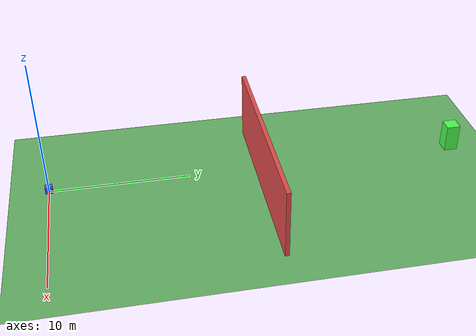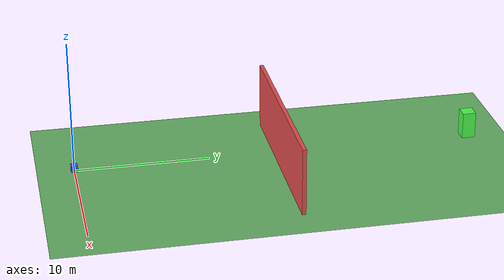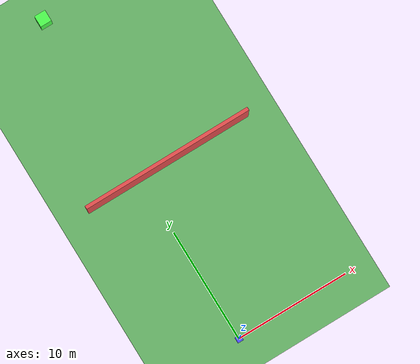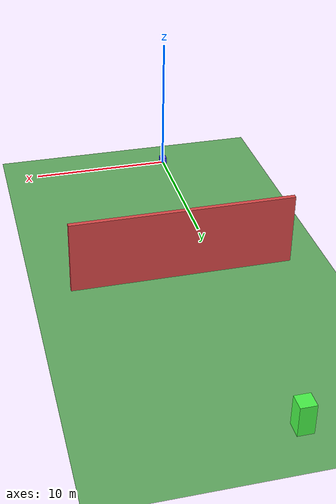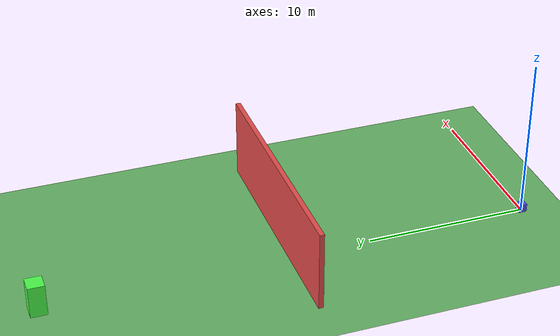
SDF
<?xml version="1.0" encoding="UTF-8"?>
<sdf version="1.9">
  <world name="simple_wall">
    <physics type="ode">
      <max_step_size>0.004</max_step_size>
      <real_time_factor>1.0</real_time_factor>
      <real_time_update_rate>250</real_time_update_rate>
    </physics>
    <gravity>0 0 -9.8</gravity>
    <magnetic_field>6e-06 2.3e-05 -4.2e-05</magnetic_field>
    <atmosphere type="adiabatic"/>
    <scene>
      <grid>true</grid>
      <ambient>0.6 0.6 0.6 1</ambient>
      <background>0.4 0.7 0.9 1</background>
      <shadows>true</shadows>
    </scene>

    <!-- Ground -->
    <model name="ground_plane">
      <static>true</static>
      <link name="link">
        <collision name="collision">
          <geometry>
            <plane>
              <normal>0 0 1</normal>
              <size>1 1</size>
            </plane>
          </geometry>
        </collision>
        <visual name="visual">
          <geometry>
            <plane>
              <normal>0 0 1</normal>
              <size>100 100</size>
            </plane>
          </geometry>
          <material>
            <ambient>0.3 0.6 0.3 1</ambient>
            <diffuse>0.4 0.7 0.4 1</diffuse>
          </material>
        </visual>
      </link>
    </model>

    <!-- Sun -->
    <light name="sunUTC" type="directional">
      <pose>0 0 500 0 0 0</pose>
      <cast_shadows>true</cast_shadows>
      <intensity>1</intensity>
      <direction>0.001 0.625 -0.78</direction>
      <diffuse>0.9 0.9 0.9 1</diffuse>
      <specular>0.3 0.3 0.3 1</specular>
    </light>

    <!-- GPS coordinates -->
    <spherical_coordinates>
      <surface_model>EARTH_WGS84</surface_model>
      <world_frame_orientation>ENU</world_frame_orientation>
      <latitude_deg>47.397971057728974</latitude_deg>
      <longitude_deg>8.546163739800146</longitude_deg>
      <elevation>0</elevation>
    </spherical_coordinates>

    <!-- Main Wall - RED - blocks the EAST path at Y=15 -->
    <model name="wall_main">
      <static>true</static>
      <pose>2.5 15 2.5 0 0 0</pose>  <!-- X=2.5 (centered), Y=15, Z=2.5 (half height) -->
      <link name="link">
        <collision name="collision">
          <geometry>
            <box>
              <size>15 0.3 5</size>  <!-- 15m wide (X), 0.3m thick (Y), 5m tall (Z) -->
            </box>
          </geometry>
        </collision>
        <visual name="visual">
          <geometry>
            <box>
              <size>15 0.3 5</size>
            </box>
          </geometry>
          <material>
            <ambient>0.8 0.2 0.2 1</ambient>
            <diffuse>0.9 0.3 0.3 1</diffuse>
          </material>
        </visual>
      </link>
    </model>

    <!-- Goal Marker - GREEN cube at goal position (30m East) -->
    <model name="goal_marker">
      <static>true</static>
      <pose>0 30 1 0 0 0</pose>
      <link name="link">
        <visual name="visual">
          <geometry>
            <box>
              <size>1 1 2</size>
            </box>
          </geometry>
          <material>
            <ambient>0.2 0.9 0.2 1</ambient>
            <diffuse>0.3 1.0 0.3 1</diffuse>
          </material>
        </visual>
      </link>
    </model>

    <!-- Start Marker - BLUE cube near spawn -->
    <model name="start_marker">
      <static>true</static>
      <pose>0 0 0.25 0 0 0</pose>
      <link name="link">
        <visual name="visual">
          <geometry>
            <box>
              <size>0.5 0.5 0.5</size>
            </box>
          </geometry>
          <material>
            <ambient>0.2 0.2 0.9 1</ambient>
            <diffuse>0.3 0.3 1.0 1</diffuse>
          </material>
        </visual>
      </link>
    </model>

  </world>
</sdf>
